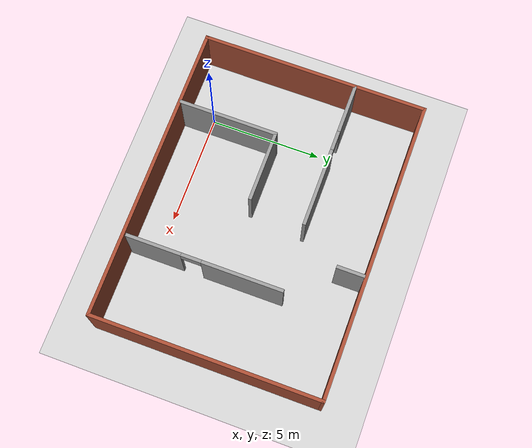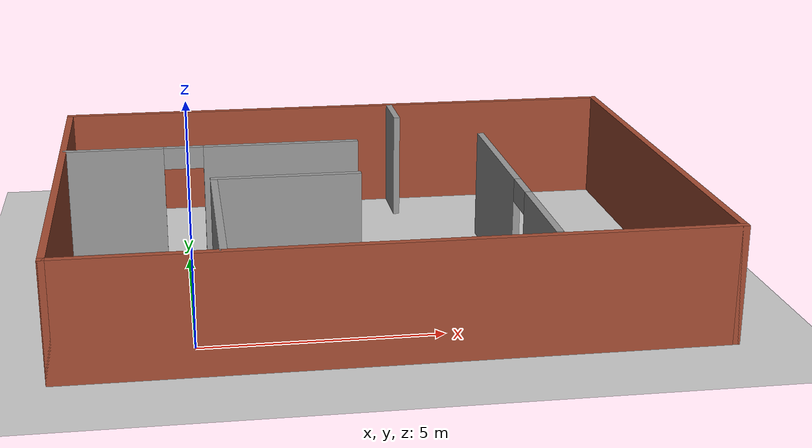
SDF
<sdf version="1.6">
 <world name="default">
  <light name="sun" type="directional">
   <pose>0 0 10 0 -0 0</pose>
   <diffuse>0.8 0.8 0.8 1</diffuse>
   <specular>0.1 0.1 0.1 1</specular>
   <attenuation>
    <range>1000</range>
    <constant>0.9</constant>
    <linear>0.01</linear>
    <quadratic>0.001</quadratic>
   </attenuation>
   <direction>-0.5 0.5 -1</direction>
  </light>
  <model name="ground_plane">
   <static>1</static>
   <link name="link">
    <collision name="collision">
     <geometry><plane><normal>0 0 1</normal><size>100 100</size></plane></geometry>
     <surface><friction><ode><mu>100</mu><mu2>50</mu2></ode></friction></surface>
    </collision>
    <visual name="visual">
     <cast_shadows>0</cast_shadows>
     <geometry><plane><normal>0 0 1</normal><size>100 100</size></plane></geometry>
     <material>
      <script><uri>file://media/materials/scripts/gazebo.material</uri><name>Gazebo/Grey</name></script>
     </material>
    </visual>
   </link>
  </model>
  <gravity>0 0 -9.8</gravity>
  <magnetic_field>6e-06 2.3e-05 -4.2e-05</magnetic_field>
  <atmosphere type="adiabatic"/>
  <physics name="default_physics" default="0" type="ode">
   <max_step_size>0.001</max_step_size>
   <real_time_factor>1</real_time_factor>
   <real_time_update_rate>1000</real_time_update_rate>
  </physics>
  <scene><ambient>0.4 0.4 0.4 1</ambient><background>0.7 0.7 0.7 1</background><shadows>1</shadows></scene>
  <spherical_coordinates>
   <surface_model>EARTH_WGS84</surface_model>
   <latitude_deg>0</latitude_deg>
   <longitude_deg>0</longitude_deg>
   <elevation>0</elevation>
   <heading_deg>0</heading_deg>
  </spherical_coordinates>
  <model name="simple">
   <pose>3.935 3.77 0 0 -0 0</pose>
   <link name="Wall_0">
    <collision name="Wall_0_Collision">
     <geometry><box><size>13.5 0.15 2.5</size></box></geometry>
     <pose>0 0 1.25 0 -0 0</pose>
    </collision>
    <visual name="Wall_0_Visual">
     <pose>0 0 1.25 0 -0 0</pose>
     <geometry><box><size>13.5 0.15 2.5</size></box></geometry>
     <material>
      <script><uri>file://media/materials/scripts/gazebo.material</uri><name>Gazebo/Bricks</name></script>
      <ambient>1 1 1 1</ambient>
     </material>
     <meta><layer>0</layer></meta>
    </visual>
    <pose>0 -5.05 0 0 -0 0</pose>
   </link>
   <link name="Wall_1">
    <collision name="Wall_1_Collision">
     <geometry><box><size>10.25 0.15 2.5</size></box></geometry>
     <pose>0 0 1.25 0 -0 0</pose>
    </collision>
    <visual name="Wall_1_Visual">
     <pose>0 0 1.25 0 -0 0</pose>
     <geometry><box><size>10.25 0.15 2.5</size></box></geometry>
     <material>
      <script><uri>file://media/materials/scripts/gazebo.material</uri><name>Gazebo/Bricks</name></script>
      <ambient>1 1 1 1</ambient>
     </material>
     <meta><layer>0</layer></meta>
    </visual>
    <pose>6.675 0 0 0 -0 1.5708</pose>
   </link>
   <link name="Wall_10">
    <pose>3.02555 -1.4291 0 0 0 -1.5708</pose>
    <visual name="Wall_10_Visual_0">
     <pose>-1.68651 0 1.25 0 -0 0</pose>
     <geometry><box><size>3.62697 0.15 2.5</size></box></geometry>
     <material>
      <script><uri>file://media/materials/scripts/gazebo.material</uri><name>Gazebo/Grey</name></script>
      <ambient>1 1 1 1</ambient>
     </material>
     <meta><layer>0</layer></meta>
    </visual>
    <collision name="Wall_10_Collision_0">
     <geometry><box><size>3.62697 0.15 2.5</size></box></geometry>
     <pose>-1.68651 0 1.25 0 -0 0</pose>
    </collision>
    <visual name="Wall_10_Visual_1">
     <pose>2.26349 0 1.25 0 -0 0</pose>
     <geometry><box><size>2.47303 0.15 2.5</size></box></geometry>
     <material>
      <script><uri>file://media/materials/scripts/gazebo.material</uri><name>Gazebo/Grey</name></script>
      <ambient>1 1 1 1</ambient>
     </material>
     <meta><layer>0</layer></meta>
    </visual>
    <collision name="Wall_10_Collision_1">
     <geometry><box><size>2.47303 0.15 2.5</size></box></geometry>
     <pose>2.26349 0 1.25 0 -0 0</pose>
    </collision>
    <visual name="Wall_10_Visual_2">
     <pose>0.576973 0 2.25 0 -0 0</pose>
     <geometry><box><size>0.9 0.15 0.5</size></box></geometry>
     <material>
      <script><uri>file://media/materials/scripts/gazebo.material</uri><name>Gazebo/Grey</name></script>
      <ambient>1 1 1 1</ambient>
     </material>
     <meta><layer>0</layer></meta>
    </visual>
    <collision name="Wall_10_Collision_2">
     <geometry><box><size>0.9 0.15 0.5</size></box></geometry>
     <pose>0.576973 0 2.25 0 -0 0</pose>
    </collision>
   </link>
   <link name="Wall_12">
    <collision name="Wall_12_Collision">
     <geometry><box><size>1.25 0.15 2.5</size></box></geometry>
     <pose>0 0 1.25 0 -0 0</pose>
    </collision>
    <visual name="Wall_12_Visual">
     <pose>0 0 1.25 0 -0 0</pose>
     <geometry><box><size>1.25 0.15 2.5</size></box></geometry>
     <material>
      <script><uri>file://media/materials/scripts/gazebo.material</uri><name>Gazebo/Grey</name></script>
      <ambient>1 1 1 1</ambient>
     </material>
     <meta><layer>0</layer></meta>
    </visual>
    <pose>1.29378 4.37104 0 0 0 -1.5708</pose>
   </link>
   <link name="Wall_2">
    <collision name="Wall_2_Collision">
     <geometry><box><size>13.5 0.15 2.5</size></box></geometry>
     <pose>0 0 1.25 0 -0 0</pose>
    </collision>
    <visual name="Wall_2_Visual">
     <pose>0 0 1.25 0 -0 0</pose>
     <geometry><box><size>13.5 0.15 2.5</size></box></geometry>
     <material>
      <script><uri>file://media/materials/scripts/gazebo.material</uri><name>Gazebo/Bricks</name></script>
      <ambient>1 1 1 1</ambient>
     </material>
     <meta><layer>0</layer></meta>
    </visual>
    <pose>0 5.05 0 0 -0 3.14159</pose>
   </link>
   <link name="Wall_3">
    <collision name="Wall_3_Collision">
     <geometry><box><size>10.25 0.15 2.5</size></box></geometry>
     <pose>0 0 1.25 0 -0 0</pose>
    </collision>
    <visual name="Wall_3_Visual">
     <pose>0 0 1.25 0 -0 0</pose>
     <geometry><box><size>10.25 0.15 2.5</size></box></geometry>
     <material>
      <script><uri>file://media/materials/scripts/gazebo.material</uri><name>Gazebo/Bricks</name></script>
      <ambient>1 1 1 1</ambient>
     </material>
     <meta><layer>0</layer></meta>
    </visual>
    <pose>-6.675 0 0 0 0 -1.5708</pose>
   </link>
   <link name="Wall_5">
    <pose>-3.31343 1.89036 0 0 -0 0</pose>
    <visual name="Wall_5_Visual_0">
     <pose>-2.23965 0 1.25 0 -0 0</pose>
     <geometry><box><size>2.27069 0.15 2.5</size></box></geometry>
     <material>
      <script><uri>file://media/materials/scripts/gazebo.material</uri><name>Gazebo/Grey</name></script>
      <ambient>1 1 1 1</ambient>
     </material>
     <meta><layer>0</layer></meta>
    </visual>
    <collision name="Wall_5_Collision_0">
     <geometry><box><size>2.27069 0.15 2.5</size></box></geometry>
     <pose>-2.23965 0 1.25 0 -0 0</pose>
    </collision>
    <visual name="Wall_5_Visual_1">
     <pose>1.58535 0 1.25 0 -0 0</pose>
     <geometry><box><size>3.57931 0.15 2.5</size></box></geometry>
     <material>
      <script><uri>file://media/materials/scripts/gazebo.material</uri><name>Gazebo/Grey</name></script>
      <ambient>1 1 1 1</ambient>
     </material>
     <meta><layer>0</layer></meta>
    </visual>
    <collision name="Wall_5_Collision_1">
     <geometry><box><size>3.57931 0.15 2.5</size></box></geometry>
     <pose>1.58535 0 1.25 0 -0 0</pose>
    </collision>
    <visual name="Wall_5_Visual_2">
     <pose>-0.654308 0 2.25 0 -0 0</pose>
     <geometry><box><size>0.9 0.15 0.5</size></box></geometry>
     <material>
      <script><uri>file://media/materials/scripts/gazebo.material</uri><name>Gazebo/Grey</name></script>
      <ambient>1 1 1 1</ambient>
     </material>
     <meta><layer>0</layer></meta>
    </visual>
    <collision name="Wall_5_Collision_2">
     <geometry><box><size>0.9 0.15 0.5</size></box></geometry>
     <pose>-0.654308 0 2.25 0 -0 0</pose>
    </collision>
   </link>
   <link name="Wall_7">
    <collision name="Wall_7_Collision">
     <geometry><box><size>4.5 0.15 2.5</size></box></geometry>
     <pose>0 0 1.25 0 -0 0</pose>
    </collision>
    <visual name="Wall_7_Visual">
     <pose>0 0 1.25 0 -0 0</pose>
     <geometry><box><size>4.5 0.15 2.5</size></box></geometry>
     <material>
      <script><uri>file://media/materials/scripts/gazebo.material</uri><name>Gazebo/Grey</name></script>
      <ambient>1 1 1 1</ambient>
     </material>
     <meta><layer>0</layer></meta>
    </visual>
    <pose>-3.37698 -2.79449 0 0 -0 1.5708</pose>
   </link>
   <link name="Wall_8">
    <collision name="Wall_8_Collision">
     <geometry><box><size>3.25 0.15 2.5</size></box></geometry>
     <pose>0 0 1.25 0 -0 0</pose>
    </collision>
    <visual name="Wall_8_Visual">
     <pose>0 0 1.25 0 -0 0</pose>
     <geometry><box><size>3.25 0.15 2.5</size></box></geometry>
     <material>
      <script><uri>file://media/materials/scripts/gazebo.material</uri><name>Gazebo/Grey</name></script>
      <ambient>1 1 1 1</ambient>
     </material>
     <meta><layer>0</layer></meta>
    </visual>
    <pose>-1.82698 -0.619495 0 0 -0 0</pose>
   </link>
   <static>1</static>
  </model>
 </world>
</sdf>
